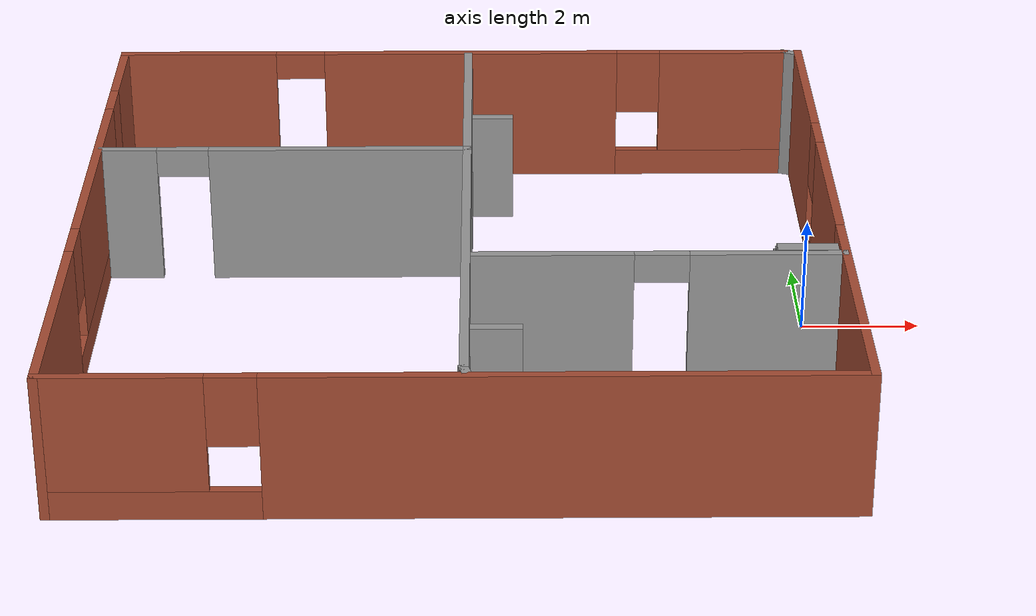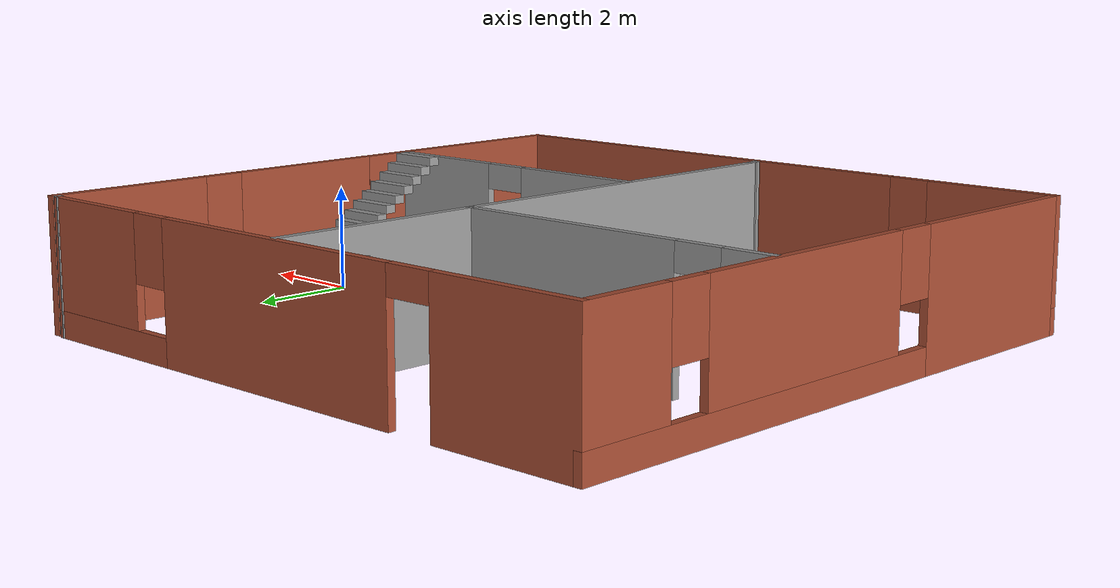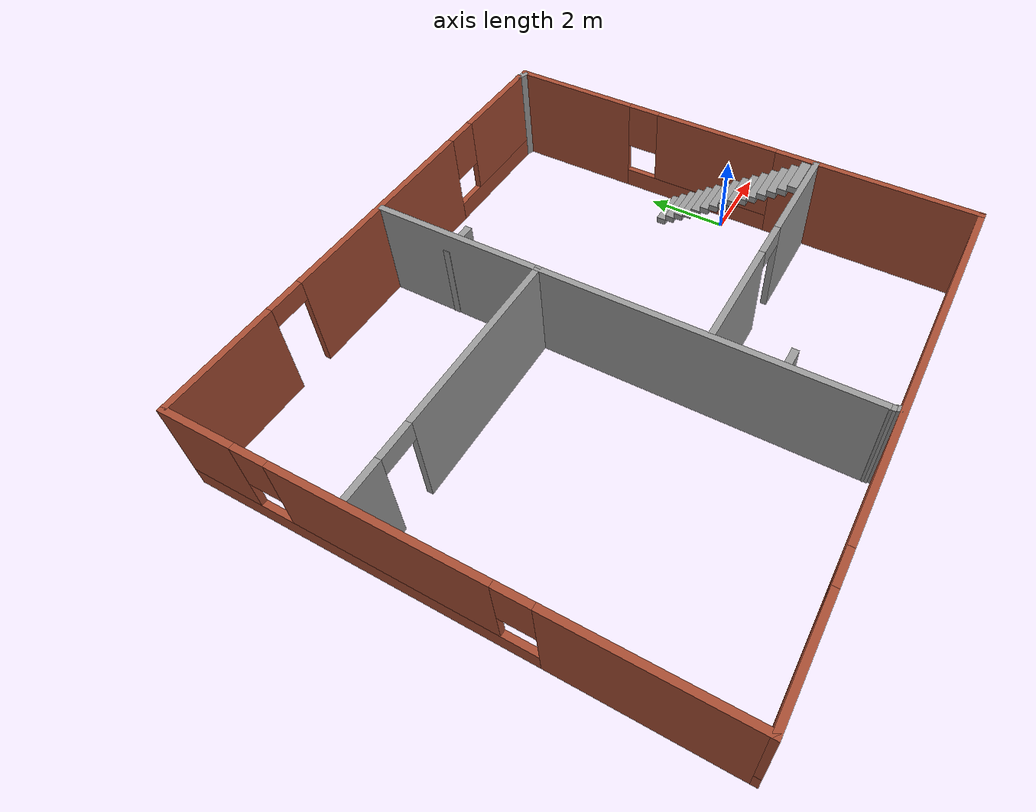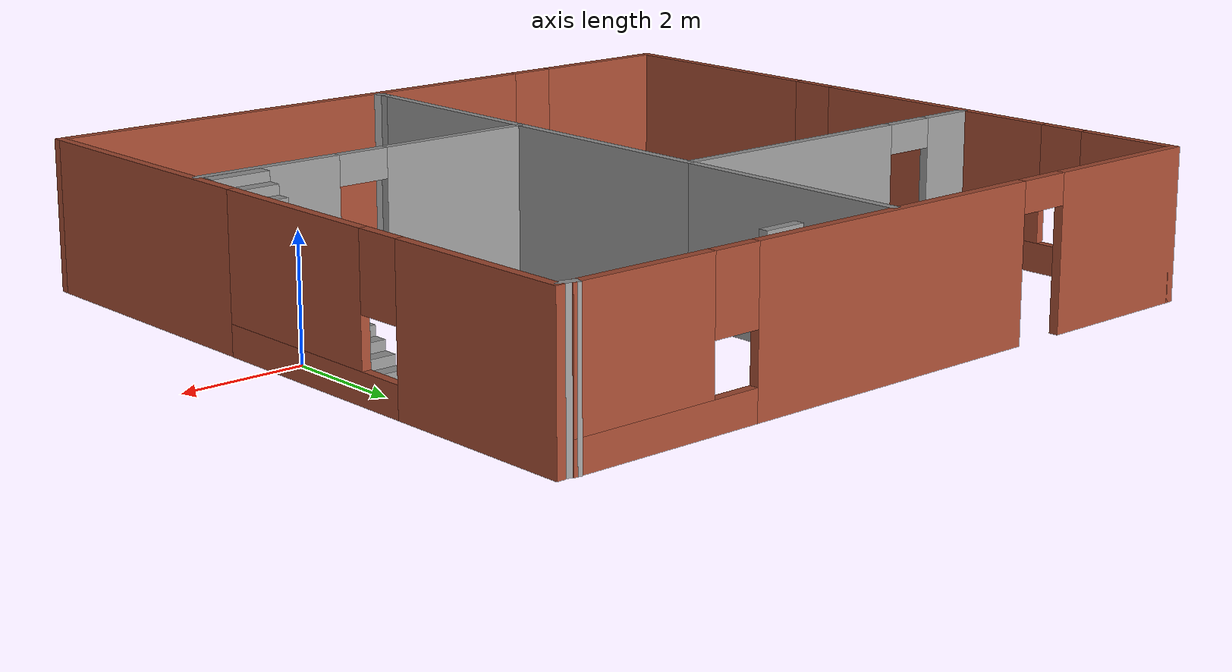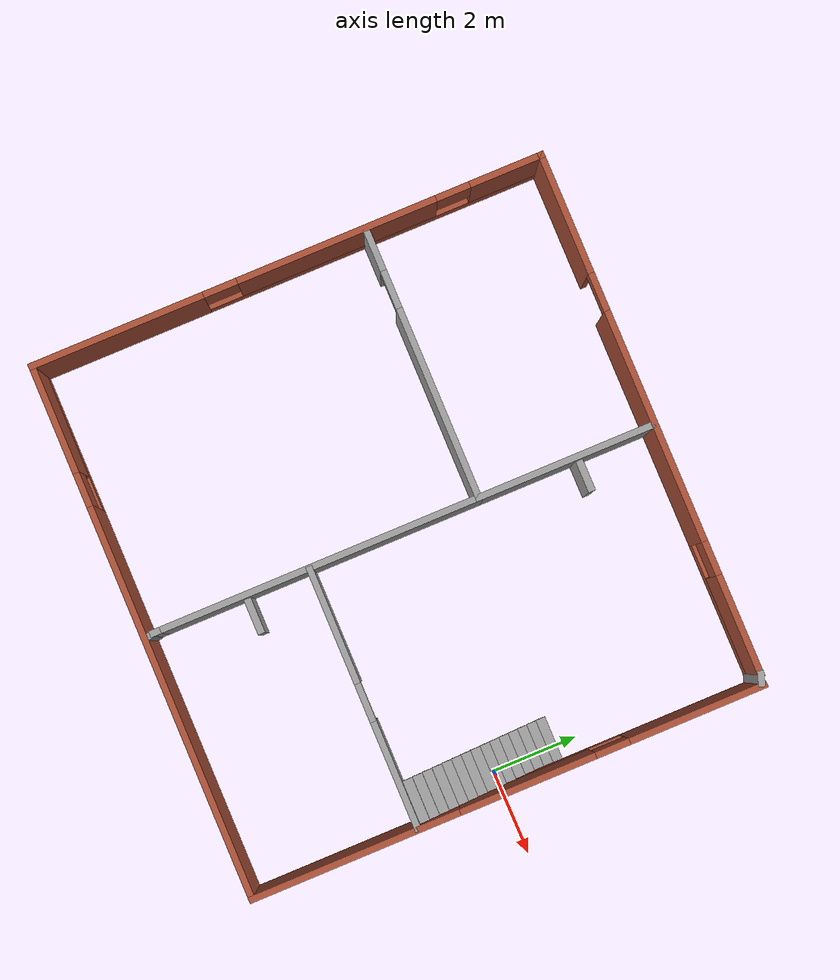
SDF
<?xml version='1.0'?>
<sdf version='1.7'>
  <model name='roomba_WOrld'>
    <pose>-5.88852 0.109623 0 0 -0 0</pose>
    <link name='Door_2'>
      <collision name='Door_2_Collision'>
        <geometry>
          <box>
            <size>0.9 0.17 2</size>
          </box>
        </geometry>
        <pose>0 0 1 0 -0 0</pose>
      </collision>
      <visual name='Door_2_Visual'>
        <pose>0 0 1 0 -0 0</pose>
        <geometry>
          <box>
            <size>0.9 0.17 2</size>
          </box>
        </geometry>
        <material>
          <script>
            <uri>file://media/materials/scripts/gazebo.material</uri>
            <name>Gazebo/Grey</name>
          </script>
        </material>
      </visual>
      <pose>0.494027 4.24245 0 0 -0 0</pose>
    </link>
    <link name='Door_3'>
      <collision name='Door_3_Collision'>
        <geometry>
          <box>
            <size>0.9 0.17 2</size>
          </box>
        </geometry>
        <pose>0 0 1 0 -0 0</pose>
      </collision>
      <visual name='Door_3_Visual'>
        <pose>0 0 1 0 -0 0</pose>
        <geometry>
          <box>
            <size>0.9 0.17 2</size>
          </box>
        </geometry>
        <material>
          <script>
            <uri>file://media/materials/scripts/gazebo.material</uri>
            <name>Gazebo/Grey</name>
          </script>
        </material>
      </visual>
      <pose>0.585798 -3.68042 0 0 -0 0</pose>
    </link>
    <link name='Stairs_0'>
      <visual name='Stairs_0_Visual_0'>
        <pose>5.69437 1.31783 0.083333 0 -0 0</pose>
        <geometry>
          <box>
            <size>1 0.233333 0.166667</size>
          </box>
        </geometry>
        <material>
          <script>
            <uri>file://media/materials/scripts/gazebo.material</uri>
            <name>Gazebo/Grey</name>
          </script>
          <ambient>1 1 1 1</ambient>
        </material>
        <meta>
          <layer>0</layer>
        </meta>
      </visual>
      <collision name='Stairs_0_Collision_0'>
        <geometry>
          <box>
            <size>1 0.233333 0.166667</size>
          </box>
        </geometry>
        <pose>5.69437 1.31783 0.083333 0 -0 0</pose>
      </collision>
      <visual name='Stairs_0_Visual_1'>
        <pose>5.69437 1.0845 0.25 0 -0 0</pose>
        <geometry>
          <box>
            <size>1 0.233333 0.166667</size>
          </box>
        </geometry>
        <material>
          <script>
            <uri>file://media/materials/scripts/gazebo.material</uri>
            <name>Gazebo/Grey</name>
          </script>
          <ambient>1 1 1 1</ambient>
        </material>
        <meta>
          <layer>0</layer>
        </meta>
      </visual>
      <collision name='Stairs_0_Collision_1'>
        <geometry>
          <box>
            <size>1 0.233333 0.166667</size>
          </box>
        </geometry>
        <pose>5.69437 1.0845 0.25 0 -0 0</pose>
      </collision>
      <visual name='Stairs_0_Visual_2'>
        <pose>5.69437 0.851167 0.416667 0 -0 0</pose>
        <geometry>
          <box>
            <size>1 0.233333 0.166667</size>
          </box>
        </geometry>
        <material>
          <script>
            <uri>file://media/materials/scripts/gazebo.material</uri>
            <name>Gazebo/Grey</name>
          </script>
          <ambient>1 1 1 1</ambient>
        </material>
        <meta>
          <layer>0</layer>
        </meta>
      </visual>
      <collision name='Stairs_0_Collision_2'>
        <geometry>
          <box>
            <size>1 0.233333 0.166667</size>
          </box>
        </geometry>
        <pose>5.69437 0.851167 0.416667 0 -0 0</pose>
      </collision>
      <visual name='Stairs_0_Visual_3'>
        <pose>5.69437 0.617834 0.583333 0 -0 0</pose>
        <geometry>
          <box>
            <size>1 0.233333 0.166667</size>
          </box>
        </geometry>
        <material>
          <script>
            <uri>file://media/materials/scripts/gazebo.material</uri>
            <name>Gazebo/Grey</name>
          </script>
          <ambient>1 1 1 1</ambient>
        </material>
        <meta>
          <layer>0</layer>
        </meta>
      </visual>
      <collision name='Stairs_0_Collision_3'>
        <geometry>
          <box>
            <size>1 0.233333 0.166667</size>
          </box>
        </geometry>
        <pose>5.69437 0.617834 0.583333 0 -0 0</pose>
      </collision>
      <visual name='Stairs_0_Visual_4'>
        <pose>5.69437 0.384501 0.75 0 -0 0</pose>
        <geometry>
          <box>
            <size>1 0.233333 0.166667</size>
          </box>
        </geometry>
        <material>
          <script>
            <uri>file://media/materials/scripts/gazebo.material</uri>
            <name>Gazebo/Grey</name>
          </script>
          <ambient>1 1 1 1</ambient>
        </material>
        <meta>
          <layer>0</layer>
        </meta>
      </visual>
      <collision name='Stairs_0_Collision_4'>
        <geometry>
          <box>
            <size>1 0.233333 0.166667</size>
          </box>
        </geometry>
        <pose>5.69437 0.384501 0.75 0 -0 0</pose>
      </collision>
      <visual name='Stairs_0_Visual_5'>
        <pose>5.69437 0.151167 0.916667 0 -0 0</pose>
        <geometry>
          <box>
            <size>1 0.233333 0.166667</size>
          </box>
        </geometry>
        <material>
          <script>
            <uri>file://media/materials/scripts/gazebo.material</uri>
            <name>Gazebo/Grey</name>
          </script>
          <ambient>1 1 1 1</ambient>
        </material>
        <meta>
          <layer>0</layer>
        </meta>
      </visual>
      <collision name='Stairs_0_Collision_5'>
        <geometry>
          <box>
            <size>1 0.233333 0.166667</size>
          </box>
        </geometry>
        <pose>5.69437 0.151167 0.916667 0 -0 0</pose>
      </collision>
      <visual name='Stairs_0_Visual_6'>
        <pose>5.69437 -0.082166 1.08333 0 -0 0</pose>
        <geometry>
          <box>
            <size>1 0.233333 0.166667</size>
          </box>
        </geometry>
        <material>
          <script>
            <uri>file://media/materials/scripts/gazebo.material</uri>
            <name>Gazebo/Grey</name>
          </script>
          <ambient>1 1 1 1</ambient>
        </material>
        <meta>
          <layer>0</layer>
        </meta>
      </visual>
      <collision name='Stairs_0_Collision_6'>
        <geometry>
          <box>
            <size>1 0.233333 0.166667</size>
          </box>
        </geometry>
        <pose>5.69437 -0.082166 1.08333 0 -0 0</pose>
      </collision>
      <visual name='Stairs_0_Visual_7'>
        <pose>5.69437 -0.315499 1.25 0 -0 0</pose>
        <geometry>
          <box>
            <size>1 0.233333 0.166667</size>
          </box>
        </geometry>
        <material>
          <script>
            <uri>file://media/materials/scripts/gazebo.material</uri>
            <name>Gazebo/Grey</name>
          </script>
          <ambient>1 1 1 1</ambient>
        </material>
        <meta>
          <layer>0</layer>
        </meta>
      </visual>
      <collision name='Stairs_0_Collision_7'>
        <geometry>
          <box>
            <size>1 0.233333 0.166667</size>
          </box>
        </geometry>
        <pose>5.69437 -0.315499 1.25 0 -0 0</pose>
      </collision>
      <visual name='Stairs_0_Visual_8'>
        <pose>5.69437 -0.548833 1.41667 0 -0 0</pose>
        <geometry>
          <box>
            <size>1 0.233333 0.166667</size>
          </box>
        </geometry>
        <material>
          <script>
            <uri>file://media/materials/scripts/gazebo.material</uri>
            <name>Gazebo/Grey</name>
          </script>
          <ambient>1 1 1 1</ambient>
        </material>
        <meta>
          <layer>0</layer>
        </meta>
      </visual>
      <collision name='Stairs_0_Collision_8'>
        <geometry>
          <box>
            <size>1 0.233333 0.166667</size>
          </box>
        </geometry>
        <pose>5.69437 -0.548833 1.41667 0 -0 0</pose>
      </collision>
      <visual name='Stairs_0_Visual_9'>
        <pose>5.69437 -0.782166 1.58333 0 -0 0</pose>
        <geometry>
          <box>
            <size>1 0.233333 0.166667</size>
          </box>
        </geometry>
        <material>
          <script>
            <uri>file://media/materials/scripts/gazebo.material</uri>
            <name>Gazebo/Grey</name>
          </script>
          <ambient>1 1 1 1</ambient>
        </material>
        <meta>
          <layer>0</layer>
        </meta>
      </visual>
      <collision name='Stairs_0_Collision_9'>
        <geometry>
          <box>
            <size>1 0.233333 0.166667</size>
          </box>
        </geometry>
        <pose>5.69437 -0.782166 1.58333 0 -0 0</pose>
      </collision>
      <visual name='Stairs_0_Visual_10'>
        <pose>5.69437 -1.0155 1.75 0 -0 0</pose>
        <geometry>
          <box>
            <size>1 0.233333 0.166667</size>
          </box>
        </geometry>
        <material>
          <script>
            <uri>file://media/materials/scripts/gazebo.material</uri>
            <name>Gazebo/Grey</name>
          </script>
          <ambient>1 1 1 1</ambient>
        </material>
        <meta>
          <layer>0</layer>
        </meta>
      </visual>
      <collision name='Stairs_0_Collision_10'>
        <geometry>
          <box>
            <size>1 0.233333 0.166667</size>
          </box>
        </geometry>
        <pose>5.69437 -1.0155 1.75 0 -0 0</pose>
      </collision>
      <visual name='Stairs_0_Visual_11'>
        <pose>5.69437 -1.24883 1.91667 0 -0 0</pose>
        <geometry>
          <box>
            <size>1 0.233333 0.166667</size>
          </box>
        </geometry>
        <material>
          <script>
            <uri>file://media/materials/scripts/gazebo.material</uri>
            <name>Gazebo/Grey</name>
          </script>
          <ambient>1 1 1 1</ambient>
        </material>
        <meta>
          <layer>0</layer>
        </meta>
      </visual>
      <collision name='Stairs_0_Collision_11'>
        <geometry>
          <box>
            <size>1 0.233333 0.166667</size>
          </box>
        </geometry>
        <pose>5.69437 -1.24883 1.91667 0 -0 0</pose>
      </collision>
      <visual name='Stairs_0_Visual_12'>
        <pose>5.69437 -1.48217 2.08333 0 -0 0</pose>
        <geometry>
          <box>
            <size>1 0.233333 0.166667</size>
          </box>
        </geometry>
        <material>
          <script>
            <uri>file://media/materials/scripts/gazebo.material</uri>
            <name>Gazebo/Grey</name>
          </script>
          <ambient>1 1 1 1</ambient>
        </material>
        <meta>
          <layer>0</layer>
        </meta>
      </visual>
      <collision name='Stairs_0_Collision_12'>
        <geometry>
          <box>
            <size>1 0.233333 0.166667</size>
          </box>
        </geometry>
        <pose>5.69437 -1.48217 2.08333 0 -0 0</pose>
      </collision>
      <visual name='Stairs_0_Visual_13'>
        <pose>5.69437 -1.7155 2.25 0 -0 0</pose>
        <geometry>
          <box>
            <size>1 0.233333 0.166667</size>
          </box>
        </geometry>
        <material>
          <script>
            <uri>file://media/materials/scripts/gazebo.material</uri>
            <name>Gazebo/Grey</name>
          </script>
          <ambient>1 1 1 1</ambient>
        </material>
        <meta>
          <layer>0</layer>
        </meta>
      </visual>
      <collision name='Stairs_0_Collision_13'>
        <geometry>
          <box>
            <size>1 0.233333 0.166667</size>
          </box>
        </geometry>
        <pose>5.69437 -1.7155 2.25 0 -0 0</pose>
      </collision>
      <visual name='Stairs_0_Visual_14'>
        <pose>5.69437 -1.94883 2.41667 0 -0 0</pose>
        <geometry>
          <box>
            <size>1 0.233333 0.166667</size>
          </box>
        </geometry>
        <material>
          <script>
            <uri>file://media/materials/scripts/gazebo.material</uri>
            <name>Gazebo/Grey</name>
          </script>
          <ambient>1 1 1 1</ambient>
        </material>
        <meta>
          <layer>0</layer>
        </meta>
      </visual>
      <collision name='Stairs_0_Collision_14'>
        <geometry>
          <box>
            <size>1 0.233333 0.166667</size>
          </box>
        </geometry>
        <pose>5.69437 -1.94883 2.41667 0 -0 0</pose>
      </collision>
    </link>
    <link name='Wall_0'>
      <collision name='Wall_0_Collision'>
        <geometry>
          <box>
            <size>5 0.15 2.5</size>
          </box>
        </geometry>
        <pose>0 0 1.25 0 -0 0</pose>
      </collision>
      <visual name='Wall_0_Visual'>
        <pose>0 0 1.25 0 -0 0</pose>
        <geometry>
          <box>
            <size>5 0.15 2.5</size>
          </box>
        </geometry>
        <material>
          <script>
            <uri>file://media/materials/scripts/gazebo.material</uri>
            <name>Gazebo/Bricks</name>
          </script>
          <ambient>1 1 1 1</ambient>
        </material>
        <meta>
          <layer>0</layer>
        </meta>
      </visual>
      <pose>6.29852 -3.63462 0 0 -0 -1.5708</pose>
    </link>
    <link name='Wall_11'>
      <collision name='Wall_11_Collision'>
        <geometry>
          <box>
            <size>7.75 0.15 2.5</size>
          </box>
        </geometry>
        <pose>0 0 1.25 0 -0 0</pose>
      </collision>
      <visual name='Wall_11_Visual'>
        <pose>0 0 1.25 0 -0 0</pose>
        <geometry>
          <box>
            <size>7.75 0.15 2.5</size>
          </box>
        </geometry>
        <material>
          <script>
            <uri>file://media/materials/scripts/gazebo.material</uri>
            <name>Gazebo/Grey</name>
          </script>
          <ambient>1 1 1 1</ambient>
        </material>
        <meta>
          <layer>0</layer>
        </meta>
      </visual>
      <pose>0.126944 -1.9445 0 0 -0 -1.5708</pose>
    </link>
    <link name='Wall_12'>
      <collision name='Wall_12_Collision'>
        <geometry>
          <box>
            <size>0.25 0.15 2.5</size>
          </box>
        </geometry>
        <pose>0 0 1.25 0 -0 0</pose>
      </collision>
      <visual name='Wall_12_Visual'>
        <pose>0 0 1.25 0 -0 0</pose>
        <geometry>
          <box>
            <size>0.25 0.15 2.5</size>
          </box>
        </geometry>
        <material>
          <script>
            <uri>file://media/materials/scripts/gazebo.material</uri>
            <name>Gazebo/Grey</name>
          </script>
          <ambient>1 1 1 1</ambient>
        </material>
        <meta>
          <layer>0</layer>
        </meta>
      </visual>
      <pose>0.126944 -5.7945 0 0 -0 -1.5708</pose>
    </link>
    <link name='Wall_13'>
      <collision name='Wall_13_Collision'>
        <geometry>
          <box>
            <size>0.25 0.15 2.5</size>
          </box>
        </geometry>
        <pose>0 0 1.25 0 -0 0</pose>
      </collision>
      <visual name='Wall_13_Visual'>
        <pose>0 0 1.25 0 -0 0</pose>
        <geometry>
          <box>
            <size>0.25 0.15 2.5</size>
          </box>
        </geometry>
        <material>
          <script>
            <uri>file://media/materials/scripts/gazebo.material</uri>
            <name>Gazebo/Grey</name>
          </script>
          <ambient>1 1 1 1</ambient>
        </material>
        <meta>
          <layer>0</layer>
        </meta>
      </visual>
      <pose>0.139885 -5.8928 0 0 -0 -1.309</pose>
    </link>
    <link name='Wall_15'>
      <pose>3.20753 -2.15091 0 0 -0 0</pose>
      <visual name='Wall_15_Visual_0'>
        <pose>-1.7371 0 1.25 0 -0 0</pose>
        <geometry>
          <box>
            <size>2.77579 0.15 2.5</size>
          </box>
        </geometry>
        <material>
          <script>
            <uri>file://media/materials/scripts/gazebo.material</uri>
            <name>Gazebo/Grey</name>
          </script>
          <ambient>1 1 1 1</ambient>
        </material>
        <meta>
          <layer>0</layer>
        </meta>
      </visual>
      <collision name='Wall_15_Collision_0'>
        <geometry>
          <box>
            <size>2.77579 0.15 2.5</size>
          </box>
        </geometry>
        <pose>-1.7371 0 1.25 0 -0 0</pose>
      </collision>
      <visual name='Wall_15_Visual_1'>
        <pose>1.8379 0 1.25 0 -0 0</pose>
        <geometry>
          <box>
            <size>2.57421 0.15 2.5</size>
          </box>
        </geometry>
        <material>
          <script>
            <uri>file://media/materials/scripts/gazebo.material</uri>
            <name>Gazebo/Grey</name>
          </script>
          <ambient>1 1 1 1</ambient>
        </material>
        <meta>
          <layer>0</layer>
        </meta>
      </visual>
      <collision name='Wall_15_Collision_1'>
        <geometry>
          <box>
            <size>2.57421 0.15 2.5</size>
          </box>
        </geometry>
        <pose>1.8379 0 1.25 0 -0 0</pose>
      </collision>
      <visual name='Wall_15_Visual_2'>
        <pose>0.100794 0 2.25 0 -0 0</pose>
        <geometry>
          <box>
            <size>0.9 0.15 0.5</size>
          </box>
        </geometry>
        <material>
          <script>
            <uri>file://media/materials/scripts/gazebo.material</uri>
            <name>Gazebo/Grey</name>
          </script>
          <ambient>1 1 1 1</ambient>
        </material>
        <meta>
          <layer>0</layer>
        </meta>
      </visual>
      <collision name='Wall_15_Collision_2'>
        <geometry>
          <box>
            <size>0.9 0.15 0.5</size>
          </box>
        </geometry>
        <pose>0.100794 0 2.25 0 -0 0</pose>
      </collision>
    </link>
    <link name='Wall_2'>
      <pose>-0.001475 -6.05962 0 0 -0 3.14159</pose>
      <visual name='Wall_2_Visual_0'>
        <pose>-1.70807 0 1.25 0 -0 0</pose>
        <geometry>
          <box>
            <size>9.33387 0.15 2.5</size>
          </box>
        </geometry>
        <material>
          <script>
            <uri>file://media/materials/scripts/gazebo.material</uri>
            <name>Gazebo/Bricks</name>
          </script>
          <ambient>1 1 1 1</ambient>
        </material>
        <meta>
          <layer>0</layer>
        </meta>
      </visual>
      <collision name='Wall_2_Collision_0'>
        <geometry>
          <box>
            <size>9.33387 0.15 2.5</size>
          </box>
        </geometry>
        <pose>-1.70807 0 1.25 0 -0 0</pose>
      </collision>
      <visual name='Wall_2_Visual_1'>
        <pose>4.66693 0 0.25 0 -0 0</pose>
        <geometry>
          <box>
            <size>3.41613 0.15 0.5</size>
          </box>
        </geometry>
        <material>
          <script>
            <uri>file://media/materials/scripts/gazebo.material</uri>
            <name>Gazebo/Bricks</name>
          </script>
          <ambient>1 1 1 1</ambient>
        </material>
        <meta>
          <layer>0</layer>
        </meta>
      </visual>
      <collision name='Wall_2_Collision_1'>
        <geometry>
          <box>
            <size>3.41613 0.15 0.5</size>
          </box>
        </geometry>
        <pose>4.66693 0 0.25 0 -0 0</pose>
      </collision>
      <visual name='Wall_2_Visual_2'>
        <pose>5.06693 0 1.5 0 -0 0</pose>
        <geometry>
          <box>
            <size>2.61613 0.15 2</size>
          </box>
        </geometry>
        <material>
          <script>
            <uri>file://media/materials/scripts/gazebo.material</uri>
            <name>Gazebo/Bricks</name>
          </script>
          <ambient>1 1 1 1</ambient>
        </material>
        <meta>
          <layer>0</layer>
        </meta>
      </visual>
      <collision name='Wall_2_Collision_2'>
        <geometry>
          <box>
            <size>2.61613 0.15 2</size>
          </box>
        </geometry>
        <pose>5.06693 0 1.5 0 -0 0</pose>
      </collision>
      <visual name='Wall_2_Visual_3'>
        <pose>3.35887 0 1.9 0 -0 0</pose>
        <geometry>
          <box>
            <size>0.8 0.15 1.2</size>
          </box>
        </geometry>
        <material>
          <script>
            <uri>file://media/materials/scripts/gazebo.material</uri>
            <name>Gazebo/Bricks</name>
          </script>
          <ambient>1 1 1 1</ambient>
        </material>
        <meta>
          <layer>0</layer>
        </meta>
      </visual>
      <collision name='Wall_2_Collision_3'>
        <geometry>
          <box>
            <size>0.8 0.15 1.2</size>
          </box>
        </geometry>
        <pose>3.35887 0 1.9 0 -0 0</pose>
      </collision>
    </link>
    <link name='Wall_3'>
      <pose>-6.30147 -0.009623 0 0 -0 1.5708</pose>
      <visual name='Wall_3_Visual_0'>
        <pose>-4.05783 0 1.25 0 -0 0</pose>
        <geometry>
          <box>
            <size>4.13433 0.15 2.5</size>
          </box>
        </geometry>
        <material>
          <script>
            <uri>file://media/materials/scripts/gazebo.material</uri>
            <name>Gazebo/Bricks</name>
          </script>
          <ambient>1 1 1 1</ambient>
        </material>
        <meta>
          <layer>0</layer>
        </meta>
      </visual>
      <collision name='Wall_3_Collision_0'>
        <geometry>
          <box>
            <size>4.13433 0.15 2.5</size>
          </box>
        </geometry>
        <pose>-4.05783 0 1.25 0 -0 0</pose>
      </collision>
      <visual name='Wall_3_Visual_1'>
        <pose>2.06717 0 0.25 0 -0 0</pose>
        <geometry>
          <box>
            <size>8.11567 0.15 0.5</size>
          </box>
        </geometry>
        <material>
          <script>
            <uri>file://media/materials/scripts/gazebo.material</uri>
            <name>Gazebo/Bricks</name>
          </script>
          <ambient>1 1 1 1</ambient>
        </material>
        <meta>
          <layer>0</layer>
        </meta>
      </visual>
      <collision name='Wall_3_Collision_1'>
        <geometry>
          <box>
            <size>8.11567 0.15 0.5</size>
          </box>
        </geometry>
        <pose>2.06717 0 0.25 0 -0 0</pose>
      </collision>
      <visual name='Wall_3_Visual_2'>
        <pose>1.17775 0 1.5 0 -0 0</pose>
        <geometry>
          <box>
            <size>4.73683 0.15 2</size>
          </box>
        </geometry>
        <material>
          <script>
            <uri>file://media/materials/scripts/gazebo.material</uri>
            <name>Gazebo/Bricks</name>
          </script>
          <ambient>1 1 1 1</ambient>
        </material>
        <meta>
          <layer>0</layer>
        </meta>
      </visual>
      <collision name='Wall_3_Collision_2'>
        <geometry>
          <box>
            <size>4.73683 0.15 2</size>
          </box>
        </geometry>
        <pose>1.17775 0 1.5 0 -0 0</pose>
      </collision>
      <visual name='Wall_3_Visual_3'>
        <pose>5.23558 0 1.5 0 -0 0</pose>
        <geometry>
          <box>
            <size>1.77883 0.15 2</size>
          </box>
        </geometry>
        <material>
          <script>
            <uri>file://media/materials/scripts/gazebo.material</uri>
            <name>Gazebo/Bricks</name>
          </script>
          <ambient>1 1 1 1</ambient>
        </material>
        <meta>
          <layer>0</layer>
        </meta>
      </visual>
      <collision name='Wall_3_Collision_3'>
        <geometry>
          <box>
            <size>1.77883 0.15 2</size>
          </box>
        </geometry>
        <pose>5.23558 0 1.5 0 -0 0</pose>
      </collision>
      <visual name='Wall_3_Visual_4'>
        <pose>-1.59067 0 1.9 0 -0 0</pose>
        <geometry>
          <box>
            <size>0.8 0.15 1.2</size>
          </box>
        </geometry>
        <material>
          <script>
            <uri>file://media/materials/scripts/gazebo.material</uri>
            <name>Gazebo/Bricks</name>
          </script>
          <ambient>1 1 1 1</ambient>
        </material>
        <meta>
          <layer>0</layer>
        </meta>
      </visual>
      <collision name='Wall_3_Collision_4'>
        <geometry>
          <box>
            <size>0.8 0.15 1.2</size>
          </box>
        </geometry>
        <pose>-1.59067 0 1.9 0 -0 0</pose>
      </collision>
      <visual name='Wall_3_Visual_5'>
        <pose>3.94617 0 1.9 0 -0 0</pose>
        <geometry>
          <box>
            <size>0.8 0.15 1.2</size>
          </box>
        </geometry>
        <material>
          <script>
            <uri>file://media/materials/scripts/gazebo.material</uri>
            <name>Gazebo/Bricks</name>
          </script>
          <ambient>1 1 1 1</ambient>
        </material>
        <meta>
          <layer>0</layer>
        </meta>
      </visual>
      <collision name='Wall_3_Collision_5'>
        <geometry>
          <box>
            <size>0.8 0.15 1.2</size>
          </box>
        </geometry>
        <pose>3.94617 0 1.9 0 -0 0</pose>
      </collision>
    </link>
    <link name='Wall_4'>
      <pose>-0.126475 6.04038 0 0 -0 0</pose>
      <visual name='Wall_4_Visual_0'>
        <pose>-4.79869 0 1.25 0 -0 0</pose>
        <geometry>
          <box>
            <size>2.90263 0.15 2.5</size>
          </box>
        </geometry>
        <material>
          <script>
            <uri>file://media/materials/scripts/gazebo.material</uri>
            <name>Gazebo/Bricks</name>
          </script>
          <ambient>1 1 1 1</ambient>
        </material>
        <meta>
          <layer>0</layer>
        </meta>
      </visual>
      <collision name='Wall_4_Collision_0'>
        <geometry>
          <box>
            <size>2.90263 0.15 2.5</size>
          </box>
        </geometry>
        <pose>-4.79869 0 1.25 0 -0 0</pose>
      </collision>
      <visual name='Wall_4_Visual_1'>
        <pose>0.293715 0 1.25 0 -0 0</pose>
        <geometry>
          <box>
            <size>5.48218 0.15 2.5</size>
          </box>
        </geometry>
        <material>
          <script>
            <uri>file://media/materials/scripts/gazebo.material</uri>
            <name>Gazebo/Bricks</name>
          </script>
          <ambient>1 1 1 1</ambient>
        </material>
        <meta>
          <layer>0</layer>
        </meta>
      </visual>
      <collision name='Wall_4_Collision_1'>
        <geometry>
          <box>
            <size>5.48218 0.15 2.5</size>
          </box>
        </geometry>
        <pose>0.293715 0 1.25 0 -0 0</pose>
      </collision>
      <visual name='Wall_4_Visual_2'>
        <pose>4.6424 0 0.25 0 -0 0</pose>
        <geometry>
          <box>
            <size>3.2152 0.15 0.5</size>
          </box>
        </geometry>
        <material>
          <script>
            <uri>file://media/materials/scripts/gazebo.material</uri>
            <name>Gazebo/Bricks</name>
          </script>
          <ambient>1 1 1 1</ambient>
        </material>
        <meta>
          <layer>0</layer>
        </meta>
      </visual>
      <collision name='Wall_4_Collision_2'>
        <geometry>
          <box>
            <size>3.2152 0.15 0.5</size>
          </box>
        </geometry>
        <pose>4.6424 0 0.25 0 -0 0</pose>
      </collision>
      <visual name='Wall_4_Visual_3'>
        <pose>5.0424 0 1.5 0 -0 0</pose>
        <geometry>
          <box>
            <size>2.4152 0.15 2</size>
          </box>
        </geometry>
        <material>
          <script>
            <uri>file://media/materials/scripts/gazebo.material</uri>
            <name>Gazebo/Bricks</name>
          </script>
          <ambient>1 1 1 1</ambient>
        </material>
        <meta>
          <layer>0</layer>
        </meta>
      </visual>
      <collision name='Wall_4_Collision_3'>
        <geometry>
          <box>
            <size>2.4152 0.15 2</size>
          </box>
        </geometry>
        <pose>5.0424 0 1.5 0 -0 0</pose>
      </collision>
      <visual name='Wall_4_Visual_4'>
        <pose>3.4348 0 1.9 0 -0 0</pose>
        <geometry>
          <box>
            <size>0.8 0.15 1.2</size>
          </box>
        </geometry>
        <material>
          <script>
            <uri>file://media/materials/scripts/gazebo.material</uri>
            <name>Gazebo/Bricks</name>
          </script>
          <ambient>1 1 1 1</ambient>
        </material>
        <meta>
          <layer>0</layer>
        </meta>
      </visual>
      <collision name='Wall_4_Collision_4'>
        <geometry>
          <box>
            <size>0.8 0.15 1.2</size>
          </box>
        </geometry>
        <pose>3.4348 0 1.9 0 -0 0</pose>
      </collision>
      <visual name='Wall_4_Visual_5'>
        <pose>-2.89737 0 2.25 0 -0 0</pose>
        <geometry>
          <box>
            <size>0.9 0.15 0.5</size>
          </box>
        </geometry>
        <material>
          <script>
            <uri>file://media/materials/scripts/gazebo.material</uri>
            <name>Gazebo/Bricks</name>
          </script>
          <ambient>1 1 1 1</ambient>
        </material>
        <meta>
          <layer>0</layer>
        </meta>
      </visual>
      <collision name='Wall_4_Collision_5'>
        <geometry>
          <box>
            <size>0.9 0.15 0.5</size>
          </box>
        </geometry>
        <pose>-2.89737 0 2.25 0 -0 0</pose>
      </collision>
    </link>
    <link name='Wall_5'>
      <collision name='Wall_5_Collision'>
        <geometry>
          <box>
            <size>0.351293 0.15 2.5</size>
          </box>
        </geometry>
        <pose>0 0 1.25 0 -0 0</pose>
      </collision>
      <visual name='Wall_5_Visual'>
        <pose>0 0 1.25 0 -0 0</pose>
        <geometry>
          <box>
            <size>0.351293 0.15 2.5</size>
          </box>
        </geometry>
        <material>
          <script>
            <uri>file://media/materials/scripts/gazebo.material</uri>
            <name>Gazebo/Grey</name>
          </script>
          <ambient>1 1 1 1</ambient>
        </material>
        <meta>
          <layer>0</layer>
        </meta>
      </visual>
      <pose>6.14441 6.00979 0 0 -0 -0.308822</pose>
    </link>
    <link name='Wall_6'>
      <pose>6.30148 2.45979 0 0 -0 -1.5708</pose>
      <visual name='Wall_6_Visual_0'>
        <pose>-2.00142 0 1.25 0 -0 0</pose>
        <geometry>
          <box>
            <size>3.24717 0.15 2.5</size>
          </box>
        </geometry>
        <material>
          <script>
            <uri>file://media/materials/scripts/gazebo.material</uri>
            <name>Gazebo/Bricks</name>
          </script>
          <ambient>1 1 1 1</ambient>
        </material>
        <meta>
          <layer>0</layer>
        </meta>
      </visual>
      <collision name='Wall_6_Collision_0'>
        <geometry>
          <box>
            <size>3.24717 0.15 2.5</size>
          </box>
        </geometry>
        <pose>-2.00142 0 1.25 0 -0 0</pose>
      </collision>
      <visual name='Wall_6_Visual_1'>
        <pose>1.62358 0 0.25 0 -0 0</pose>
        <geometry>
          <box>
            <size>4.00283 0.15 0.5</size>
          </box>
        </geometry>
        <material>
          <script>
            <uri>file://media/materials/scripts/gazebo.material</uri>
            <name>Gazebo/Bricks</name>
          </script>
          <ambient>1 1 1 1</ambient>
        </material>
        <meta>
          <layer>0</layer>
        </meta>
      </visual>
      <collision name='Wall_6_Collision_1'>
        <geometry>
          <box>
            <size>4.00283 0.15 0.5</size>
          </box>
        </geometry>
        <pose>1.62358 0 0.25 0 -0 0</pose>
      </collision>
      <visual name='Wall_6_Visual_2'>
        <pose>2.02358 0 1.5 0 -0 0</pose>
        <geometry>
          <box>
            <size>3.20283 0.15 2</size>
          </box>
        </geometry>
        <material>
          <script>
            <uri>file://media/materials/scripts/gazebo.material</uri>
            <name>Gazebo/Bricks</name>
          </script>
          <ambient>1 1 1 1</ambient>
        </material>
        <meta>
          <layer>0</layer>
        </meta>
      </visual>
      <collision name='Wall_6_Collision_2'>
        <geometry>
          <box>
            <size>3.20283 0.15 2</size>
          </box>
        </geometry>
        <pose>2.02358 0 1.5 0 -0 0</pose>
      </collision>
      <visual name='Wall_6_Visual_3'>
        <pose>0.022166 0 1.9 0 -0 0</pose>
        <geometry>
          <box>
            <size>0.8 0.15 1.2</size>
          </box>
        </geometry>
        <material>
          <script>
            <uri>file://media/materials/scripts/gazebo.material</uri>
            <name>Gazebo/Bricks</name>
          </script>
          <ambient>1 1 1 1</ambient>
        </material>
        <meta>
          <layer>0</layer>
        </meta>
      </visual>
      <collision name='Wall_6_Collision_3'>
        <geometry>
          <box>
            <size>0.8 0.15 1.2</size>
          </box>
        </geometry>
        <pose>0.022166 0 1.9 0 -0 0</pose>
      </collision>
    </link>
    <link name='Wall_8'>
      <collision name='Wall_8_Collision'>
        <geometry>
          <box>
            <size>4.25 0.15 2.5</size>
          </box>
        </geometry>
        <pose>0 0 1.25 0 -0 0</pose>
      </collision>
      <visual name='Wall_8_Visual'>
        <pose>0 0 1.25 0 -0 0</pose>
        <geometry>
          <box>
            <size>4.25 0.15 2.5</size>
          </box>
        </geometry>
        <material>
          <script>
            <uri>file://media/materials/scripts/gazebo.material</uri>
            <name>Gazebo/Grey</name>
          </script>
          <ambient>1 1 1 1</ambient>
        </material>
        <meta>
          <layer>0</layer>
        </meta>
      </visual>
      <pose>0.126944 3.9055 0 0 -0 -1.5708</pose>
    </link>
    <link name='Wall_9'>
      <pose>-3.04806 1.8555 0 0 -0 3.14159</pose>
      <visual name='Wall_9_Visual_0'>
        <pose>-0.959692 0 1.25 0 -0 0</pose>
        <geometry>
          <box>
            <size>4.58062 0.15 2.5</size>
          </box>
        </geometry>
        <material>
          <script>
            <uri>file://media/materials/scripts/gazebo.material</uri>
            <name>Gazebo/Grey</name>
          </script>
          <ambient>1 1 1 1</ambient>
        </material>
        <meta>
          <layer>0</layer>
        </meta>
      </visual>
      <collision name='Wall_9_Collision_0'>
        <geometry>
          <box>
            <size>4.58062 0.15 2.5</size>
          </box>
        </geometry>
        <pose>-0.959692 0 1.25 0 -0 0</pose>
      </collision>
      <visual name='Wall_9_Visual_1'>
        <pose>2.74031 0 1.25 0 -0 0</pose>
        <geometry>
          <box>
            <size>1.01938 0.15 2.5</size>
          </box>
        </geometry>
        <material>
          <script>
            <uri>file://media/materials/scripts/gazebo.material</uri>
            <name>Gazebo/Grey</name>
          </script>
          <ambient>1 1 1 1</ambient>
        </material>
        <meta>
          <layer>0</layer>
        </meta>
      </visual>
      <collision name='Wall_9_Collision_1'>
        <geometry>
          <box>
            <size>1.01938 0.15 2.5</size>
          </box>
        </geometry>
        <pose>2.74031 0 1.25 0 -0 0</pose>
      </collision>
      <visual name='Wall_9_Visual_2'>
        <pose>1.78062 0 2.25 0 -0 0</pose>
        <geometry>
          <box>
            <size>0.9 0.15 0.5</size>
          </box>
        </geometry>
        <material>
          <script>
            <uri>file://media/materials/scripts/gazebo.material</uri>
            <name>Gazebo/Grey</name>
          </script>
          <ambient>1 1 1 1</ambient>
        </material>
        <meta>
          <layer>0</layer>
        </meta>
      </visual>
      <collision name='Wall_9_Collision_2'>
        <geometry>
          <box>
            <size>0.9 0.15 0.5</size>
          </box>
        </geometry>
        <pose>1.78062 0 2.25 0 -0 0</pose>
      </collision>
    </link>
    <static>1</static>
  </model>
</sdf>
